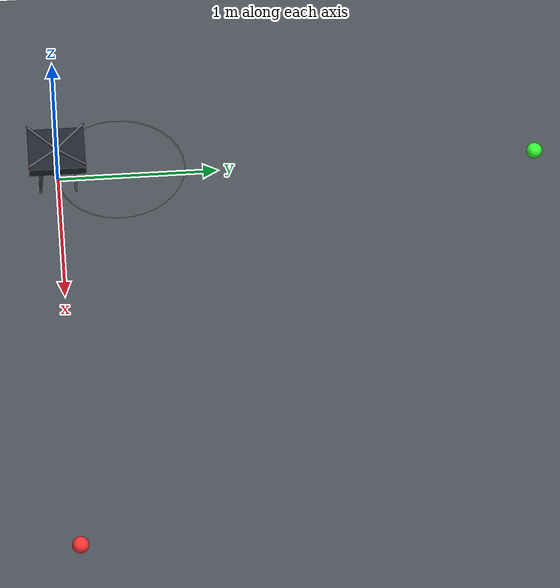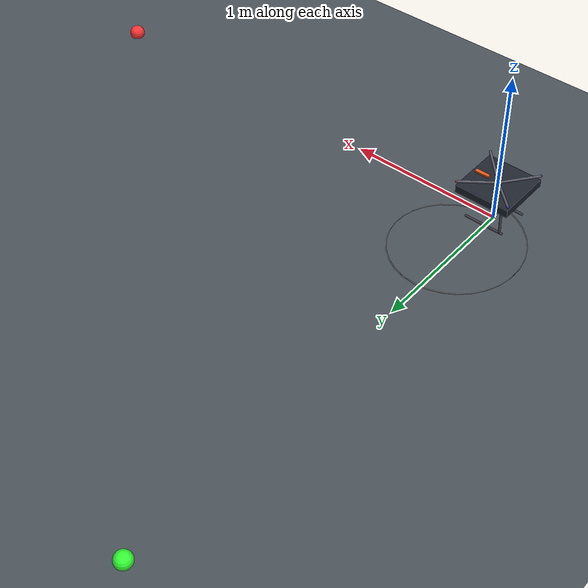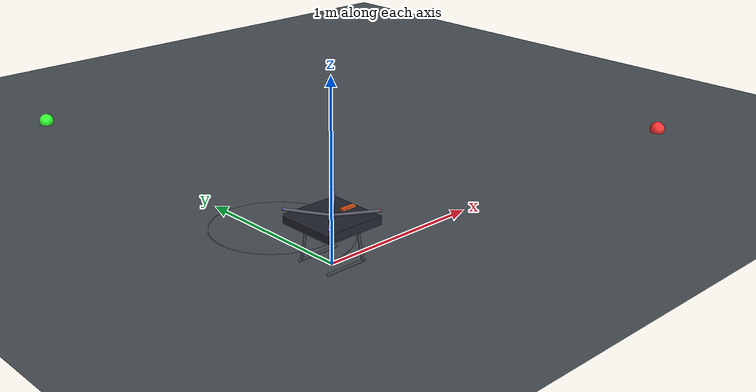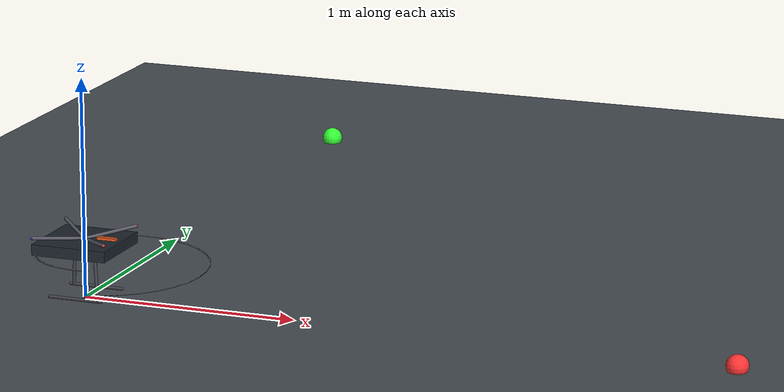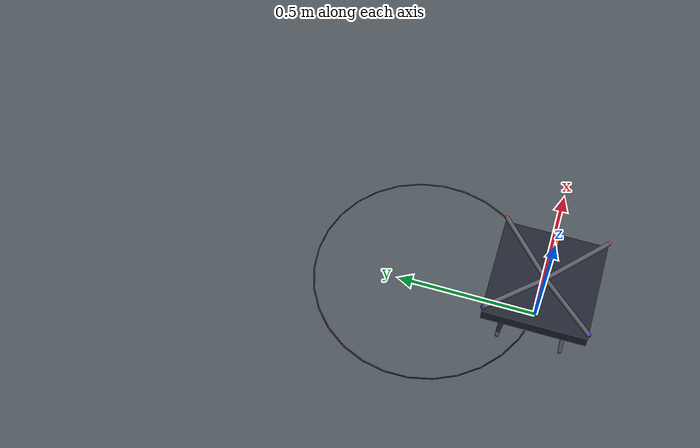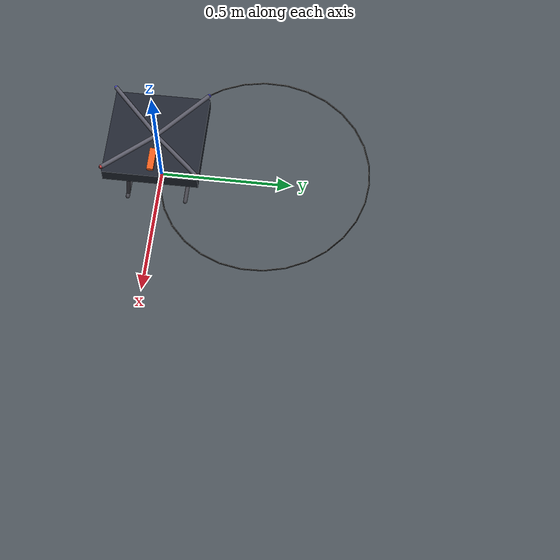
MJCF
<?xml version='1.0' encoding='utf-8'?>
<mujoco model="x500_tether_n30">
  <compiler angle="radian" coordinate="local" />
  <option timestep="0.001" gravity="0 0 -9.80665" integrator="RK4" density="1.2" viscosity="0" />
  <default>
    <geom contype="1" conaffinity="1" condim="3" friction="1.0 0.05 0.05" />
    <site type="sphere" size="0.008" rgba="1 0 0 1" />
  </default>
  <visual>
    <headlight ambient="0.4 0.4 0.4" />
    <global offwidth="1280" offheight="720" />
  </visual>
  <asset>
    <texture name="grid" type="2d" builtin="checker" rgb1="0.25 0.28 0.30" rgb2="0.32 0.35 0.38" width="512" height="512" />
    <material name="grid" texture="grid" texrepeat="12 12" reflectance="0.05" />
  </asset>
  <worldbody>
    <light pos="0 0 6" dir="0 0 -1" diffuse="0.8 0.8 0.8" />
    <geom name="floor" type="plane" size="60 60 0.1" material="grid" pos="0 0 0" />
    <site name="east_marker" pos="3 0 0.02" size="0.05" rgba="1 0.2 0.2 1" />
    <site name="north_marker" pos="0 3 0.02" size="0.05" rgba="0.2 1 0.2 1" />
    <body name="base_link" pos="0 0 0.24">
      <freejoint name="base_free" />
      <inertial pos="0 0 0.00186913" mass="2.0643076923076924" diaginertia="0.02383948 0.02394241 0.04399995" />
      <geom name="core" type="box" size="0.1767767 0.1767767 0.025" pos="0 0 0.007" density="0" rgba="0.12 0.14 0.18 1" />
      <geom name="nose" type="box" size="0.045 0.012 0.006" pos="0.11 0 0.04" density="0" contype="0" conaffinity="0" rgba="0.9 0.35 0.1 1" />
      <geom name="arm0" type="capsule" fromto="0 0 0.03 0.174 -0.174 0.06" size="0.008" density="0" rgba="0.35 0.35 0.4 1" />
      <geom name="arm1" type="capsule" fromto="0 0 0.03 -0.174 0.174 0.06" size="0.008" density="0" rgba="0.35 0.35 0.4 1" />
      <geom name="arm2" type="capsule" fromto="0 0 0.03 0.174 0.174 0.06" size="0.008" density="0" rgba="0.35 0.35 0.4 1" />
      <geom name="arm3" type="capsule" fromto="0 0 0.03 -0.174 -0.174 0.06" size="0.008" density="0" rgba="0.35 0.35 0.4 1" />
      <geom name="leg0" type="capsule" fromto="0.09 -0.09 -0.02 0.11 -0.11 -0.22" size="0.0075" density="0" rgba="0.25 0.25 0.28 1" />
      <geom name="leg1" type="capsule" fromto="-0.09 0.09 -0.02 -0.11 0.11 -0.22" size="0.0075" density="0" rgba="0.25 0.25 0.28 1" />
      <geom name="foot0" type="capsule" fromto="-0.125 -0.11 -0.22 0.125 -0.11 -0.22" size="0.0075" density="0" rgba="0.25 0.25 0.28 1" />
      <geom name="foot1" type="capsule" fromto="-0.125 0.11 -0.22 0.125 0.11 -0.22" size="0.0075" density="0" rgba="0.25 0.25 0.28 1" />
      <site name="imu" pos="0 0 0" quat="1 0 0 0" />
      <site name="rotor0" pos="0.174 -0.174 0.06" rgba="0.9 0.3 0.3 1" />
      <site name="rotor1" pos="-0.174 0.174 0.06" rgba="0.3 0.3 0.9 1" />
      <site name="rotor2" pos="0.174 0.174 0.06" rgba="0.9 0.3 0.3 1" />
      <site name="rotor3" pos="-0.174 -0.174 0.06" rgba="0.3 0.3 0.9 1" />
      <site name="tether_attach" pos="0 0 -0.12" size="0.012" rgba="0 0.8 0.2 1" />
    </body>
    <body name="tether_link_1" pos="0 0 0.01">
      <joint name="tether_joint_1" type="ball" damping="0.002" armature="1e-6" />
      <geom name="tether_geom_1" type="capsule" fromto="0 0 0 0.082796560981377734 0.0087022692245756345 0.003666666666666667" size="0.0030000000000000001" mass="0.0050000000000000001" contype="2" conaffinity="1" rgba="0.04 0.04 0.04 1" />
      <body name="tether_link_2" pos="0.082796560981377734 0.0087022692245756345 0.003666666666666667">
        <joint name="tether_joint_2" type="ball" damping="0.002" armature="1e-6" />
        <geom name="tether_geom_2" type="capsule" fromto="0 0 0 0.07917795396451198 0.025726476750492305 0.0036666666666666653" size="0.0030000000000000001" mass="0.0050000000000000001" contype="2" conaffinity="1" rgba="0.04 0.04 0.04 1" />
        <body name="tether_link_3" pos="0.07917795396451198 0.025726476750492305 0.0036666666666666653">
          <joint name="tether_joint_3" type="ball" damping="0.002" armature="1e-6" />
          <geom name="tether_geom_3" type="capsule" fromto="0 0 0 0.072098890421420508 0.041626313793080433 0.0036666666666666688" size="0.0030000000000000001" mass="0.0050000000000000001" contype="2" conaffinity="1" rgba="0.04 0.04 0.04 1" />
          <body name="tether_link_4" pos="0.072098890421420508 0.041626313793080433 0.0036666666666666688">
            <joint name="tether_joint_4" type="ball" damping="0.002" armature="1e-6" />
            <geom name="tether_geom_4" type="capsule" fromto="0 0 0 0.061868759398052003 0.055706881177696052 0.0036666666666666653" size="0.0030000000000000001" mass="0.0050000000000000001" contype="2" conaffinity="1" rgba="0.04 0.04 0.04 1" />
            <body name="tether_link_5" pos="0.061868759398052003 0.055706881177696052 0.0036666666666666653">
              <joint name="tether_joint_5" type="ball" damping="0.002" armature="1e-6" />
              <geom name="tether_geom_5" type="capsule" fromto="0 0 0 0.048934666709742891 0.067352790543572683 0.0036666666666666688" size="0.0030000000000000001" mass="0.0050000000000000001" contype="2" conaffinity="1" rgba="0.04 0.04 0.04 1" />
              <body name="tether_link_6" pos="0.048934666709742891 0.067352790543572683 0.0036666666666666688">
                <joint name="tether_joint_6" type="ball" damping="0.002" armature="1e-6" />
                <geom name="tether_geom_6" type="capsule" fromto="0 0 0 0.033861894271634885 0.076055059768148414 0.0036666666666666653" size="0.0030000000000000001" mass="0.0050000000000000001" contype="2" conaffinity="1" rgba="0.04 0.04 0.04 1" />
                <body name="tether_link_7" pos="0.033861894271634885 0.076055059768148414 0.0036666666666666653">
                  <joint name="tether_joint_7" type="ball" damping="0.002" armature="1e-6" />
                  <geom name="tether_geom_7" type="capsule" fromto="0 0 0 0.017309194566459907 0.081433357928188399 0.0036666666666666653" size="0.0030000000000000001" mass="0.0050000000000000001" contype="2" conaffinity="1" rgba="0.04 0.04 0.04 1" />
                  <body name="tether_link_8" pos="0.017309194566459907 0.081433357928188399 0.0036666666666666653">
                    <joint name="tether_joint_8" type="ball" damping="0.002" armature="1e-6" />
                    <geom name="tether_geom_8" type="capsule" fromto="0 0 0 5.5511151231257827e-17 0.08325262758616081 0.0036666666666666653" size="0.0030000000000000001" mass="0.0050000000000000001" contype="2" conaffinity="1" rgba="0.04 0.04 0.04 1" />
                    <body name="tether_link_9" pos="5.5511151231257827e-17 0.08325262758616081 0.0036666666666666653">
                      <joint name="tether_joint_9" type="ball" damping="0.002" armature="1e-6" />
                      <geom name="tether_geom_9" type="capsule" fromto="0 0 0 -0.017309194566459907 0.081433357928188344 0.0036666666666666722" size="0.0030000000000000001" mass="0.0050000000000000001" contype="2" conaffinity="1" rgba="0.04 0.04 0.04 1" />
                      <body name="tether_link_10" pos="-0.017309194566459907 0.081433357928188344 0.0036666666666666722">
                        <joint name="tether_joint_10" type="ball" damping="0.002" armature="1e-6" />
                        <geom name="tether_geom_10" type="capsule" fromto="0 0 0 -0.033861894271634885 0.076055059768148303 0.0036666666666666653" size="0.0030000000000000001" mass="0.0050000000000000001" contype="2" conaffinity="1" rgba="0.04 0.04 0.04 1" />
                        <body name="tether_link_11" pos="-0.033861894271634885 0.076055059768148303 0.0036666666666666653">
                          <joint name="tether_joint_11" type="ball" damping="0.002" armature="1e-6" />
                          <geom name="tether_geom_11" type="capsule" fromto="0 0 0 -0.048934666709742836 0.067352790543572683 0.0036666666666666653" size="0.0030000000000000001" mass="0.0050000000000000001" contype="2" conaffinity="1" rgba="0.04 0.04 0.04 1" />
                          <body name="tether_link_12" pos="-0.048934666709742836 0.067352790543572683 0.0036666666666666653">
                            <joint name="tether_joint_12" type="ball" damping="0.002" armature="1e-6" />
                            <geom name="tether_geom_12" type="capsule" fromto="0 0 0 -0.061868759398052059 0.055706881177696177 0.0036666666666666722" size="0.0030000000000000001" mass="0.0050000000000000001" contype="2" conaffinity="1" rgba="0.04 0.04 0.04 1" />
                            <body name="tether_link_13" pos="-0.061868759398052059 0.055706881177696177 0.0036666666666666722">
                              <joint name="tether_joint_13" type="ball" damping="0.002" armature="1e-6" />
                              <geom name="tether_geom_13" type="capsule" fromto="0 0 0 -0.072098890421420619 0.041626313793080572 0.0036666666666666653" size="0.0030000000000000001" mass="0.0050000000000000001" contype="2" conaffinity="1" rgba="0.04 0.04 0.04 1" />
                              <body name="tether_link_14" pos="-0.072098890421420619 0.041626313793080572 0.0036666666666666653">
                                <joint name="tether_joint_14" type="ball" damping="0.002" armature="1e-6" />
                                <geom name="tether_geom_14" type="capsule" fromto="0 0 0 -0.079177953964511924 0.025726476750492222 0.0036666666666666653" size="0.0030000000000000001" mass="0.0050000000000000001" contype="2" conaffinity="1" rgba="0.04 0.04 0.04 1" />
                                <body name="tether_link_15" pos="-0.079177953964511924 0.025726476750492222 0.0036666666666666653">
                                  <joint name="tether_joint_15" type="ball" damping="0.002" armature="1e-6" />
                                  <geom name="tether_geom_15" type="capsule" fromto="0 0 0 -0.082796560981377679 0.0087022692245756206 0.0036666666666666653" size="0.0030000000000000001" mass="0.0050000000000000001" contype="2" conaffinity="1" rgba="0.04 0.04 0.04 1" />
                                  <body name="tether_link_16" pos="-0.082796560981377679 0.0087022692245756206 0.0036666666666666653">
                                    <joint name="tether_joint_16" type="ball" damping="0.002" armature="1e-6" />
                                    <geom name="tether_geom_16" type="capsule" fromto="0 0 0 -0.082796560981377693 -0.0087022692245756206 0.0036666666666666653" size="0.0030000000000000001" mass="0.0050000000000000001" contype="2" conaffinity="1" rgba="0.04 0.04 0.04 1" />
                                    <body name="tether_link_17" pos="-0.082796560981377693 -0.0087022692245756206 0.0036666666666666653">
                                      <joint name="tether_joint_17" type="ball" damping="0.002" armature="1e-6" />
                                      <geom name="tether_geom_17" type="capsule" fromto="0 0 0 -0.079177953964511938 -0.025726476750492222 0.0036666666666666653" size="0.0030000000000000001" mass="0.0050000000000000001" contype="2" conaffinity="1" rgba="0.04 0.04 0.04 1" />
                                      <body name="tether_link_18" pos="-0.079177953964511938 -0.025726476750492222 0.0036666666666666653">
                                        <joint name="tether_joint_18" type="ball" damping="0.002" armature="1e-6" />
                                        <geom name="tether_geom_18" type="capsule" fromto="0 0 0 -0.072098890421420619 -0.041626313793080572 0.0036666666666666653" size="0.0030000000000000001" mass="0.0050000000000000001" contype="2" conaffinity="1" rgba="0.04 0.04 0.04 1" />
                                        <body name="tether_link_19" pos="-0.072098890421420619 -0.041626313793080572 0.0036666666666666653">
                                          <joint name="tether_joint_19" type="ball" damping="0.002" armature="1e-6" />
                                          <geom name="tether_geom_19" type="capsule" fromto="0 0 0 -0.061868759398051976 -0.055706881177695955 0.0036666666666666653" size="0.0030000000000000001" mass="0.0050000000000000001" contype="2" conaffinity="1" rgba="0.04 0.04 0.04 1" />
                                          <body name="tether_link_20" pos="-0.061868759398051976 -0.055706881177695955 0.0036666666666666653">
                                            <joint name="tether_joint_20" type="ball" damping="0.002" armature="1e-6" />
                                            <geom name="tether_geom_20" type="capsule" fromto="0 0 0 -0.048934666709742891 -0.067352790543572572 0.0036666666666666653" size="0.0030000000000000001" mass="0.0050000000000000001" contype="2" conaffinity="1" rgba="0.04 0.04 0.04 1" />
                                            <body name="tether_link_21" pos="-0.048934666709742891 -0.067352790543572572 0.0036666666666666653">
                                              <joint name="tether_joint_21" type="ball" damping="0.002" armature="1e-6" />
                                              <geom name="tether_geom_21" type="capsule" fromto="0 0 0 -0.03386189427163494 -0.076055059768148636 0.0036666666666666653" size="0.0030000000000000001" mass="0.0050000000000000001" contype="2" conaffinity="1" rgba="0.04 0.04 0.04 1" />
                                              <body name="tether_link_22" pos="-0.03386189427163494 -0.076055059768148636 0.0036666666666666653">
                                                <joint name="tether_joint_22" type="ball" damping="0.002" armature="1e-6" />
                                                <geom name="tether_geom_22" type="capsule" fromto="0 0 0 -0.017309194566459907 -0.08143335792818801 0.0036666666666666653" size="0.0030000000000000001" mass="0.0050000000000000001" contype="2" conaffinity="1" rgba="0.04 0.04 0.04 1" />
                                                <body name="tether_link_23" pos="-0.017309194566459907 -0.08143335792818801 0.0036666666666666653">
                                                  <joint name="tether_joint_23" type="ball" damping="0.002" armature="1e-6" />
                                                  <geom name="tether_geom_23" type="capsule" fromto="0 0 0 -5.5511151231257827e-17 -0.083252627586160977 0.0036666666666666653" size="0.0030000000000000001" mass="0.0050000000000000001" contype="2" conaffinity="1" rgba="0.04 0.04 0.04 1" />
                                                  <body name="tether_link_24" pos="-5.5511151231257827e-17 -0.083252627586160977 0.0036666666666666653">
                                                    <joint name="tether_joint_24" type="ball" damping="0.002" armature="1e-6" />
                                                    <geom name="tether_geom_24" type="capsule" fromto="0 0 0 0.017309194566459907 -0.081433357928188455 0.0036666666666666792" size="0.0030000000000000001" mass="0.0050000000000000001" contype="2" conaffinity="1" rgba="0.04 0.04 0.04 1" />
                                                    <body name="tether_link_25" pos="0.017309194566459907 -0.081433357928188455 0.0036666666666666792">
                                                      <joint name="tether_joint_25" type="ball" damping="0.002" armature="1e-6" />
                                                      <geom name="tether_geom_25" type="capsule" fromto="0 0 0 0.03386189427163494 -0.076055059768148525 0.0036666666666666653" size="0.0030000000000000001" mass="0.0050000000000000001" contype="2" conaffinity="1" rgba="0.04 0.04 0.04 1" />
                                                      <body name="tether_link_26" pos="0.03386189427163494 -0.076055059768148525 0.0036666666666666653">
                                                        <joint name="tether_joint_26" type="ball" damping="0.002" armature="1e-6" />
                                                        <geom name="tether_geom_26" type="capsule" fromto="0 0 0 0.048934666709742947 -0.067352790543572766 0.0036666666666666653" size="0.0030000000000000001" mass="0.0050000000000000001" contype="2" conaffinity="1" rgba="0.04 0.04 0.04 1" />
                                                        <body name="tether_link_27" pos="0.048934666709742947 -0.067352790543572766 0.0036666666666666653">
                                                          <joint name="tether_joint_27" type="ball" damping="0.002" armature="1e-6" />
                                                          <geom name="tether_geom_27" type="capsule" fromto="0 0 0 0.061868759398051865 -0.055706881177695927 0.0036666666666666653" size="0.0030000000000000001" mass="0.0050000000000000001" contype="2" conaffinity="1" rgba="0.04 0.04 0.04 1" />
                                                          <body name="tether_link_28" pos="0.061868759398051865 -0.055706881177695927 0.0036666666666666653">
                                                            <joint name="tether_joint_28" type="ball" damping="0.002" armature="1e-6" />
                                                            <geom name="tether_geom_28" type="capsule" fromto="0 0 0 0.072098890421420592 -0.041626313793080516 0.0036666666666666653" size="0.0030000000000000001" mass="0.0050000000000000001" contype="2" conaffinity="1" rgba="0.04 0.04 0.04 1" />
                                                            <body name="tether_link_29" pos="0.072098890421420592 -0.041626313793080516 0.0036666666666666653">
                                                              <joint name="tether_joint_29" type="ball" damping="0.002" armature="1e-6" />
                                                              <geom name="tether_geom_29" type="capsule" fromto="0 0 0 0.079177953964511757 -0.025726476750492222 0.0036666666666666653" size="0.0030000000000000001" mass="0.0050000000000000001" contype="2" conaffinity="1" rgba="0.04 0.04 0.04 1" />
                                                              <body name="tether_link_30" pos="0.079177953964511757 -0.025726476750492222 0.0036666666666666653">
                                                                <joint name="tether_joint_30" type="ball" damping="0.002" armature="1e-6" />
                                                                <geom name="tether_geom_30" type="capsule" fromto="0 0 0 0.082796560981377956 -0.0087022692245756778 0.0036666666666666653" size="0.0030000000000000001" mass="0.0050000000000000001" contype="2" conaffinity="1" rgba="0.04 0.04 0.04 1" />
                                                                <site name="tether_endpoint" pos="0.082796560981377956 -0.0087022692245756778 0.0036666666666666653" size="0.012" rgba="0 0.3 1 1" />
                                                              </body>
                                                            </body>
                                                          </body>
                                                        </body>
                                                      </body>
                                                    </body>
                                                  </body>
                                                </body>
                                              </body>
                                            </body>
                                          </body>
                                        </body>
                                      </body>
                                    </body>
                                  </body>
                                </body>
                              </body>
                            </body>
                          </body>
                        </body>
                      </body>
                    </body>
                  </body>
                </body>
              </body>
            </body>
          </body>
        </body>
      </body>
    </body>
    <site name="tether_anchor" pos="0 0 0.01" size="0.015" rgba="1 0.1 0.1 1" />
  </worldbody>
  <sensor>
    <accelerometer name="imu_accel" site="imu" />
    <gyro name="imu_gyro" site="imu" />
  </sensor>
  <equality>
    <connect name="tether_uav_connection" body1="tether_link_30" body2="base_link" anchor="0.082796560981377956 -0.0087022692245756778 0.0036666666666666653" solref="0.01 1" solimp="0.95 0.99 0.001" />
  </equality>
</mujoco>
